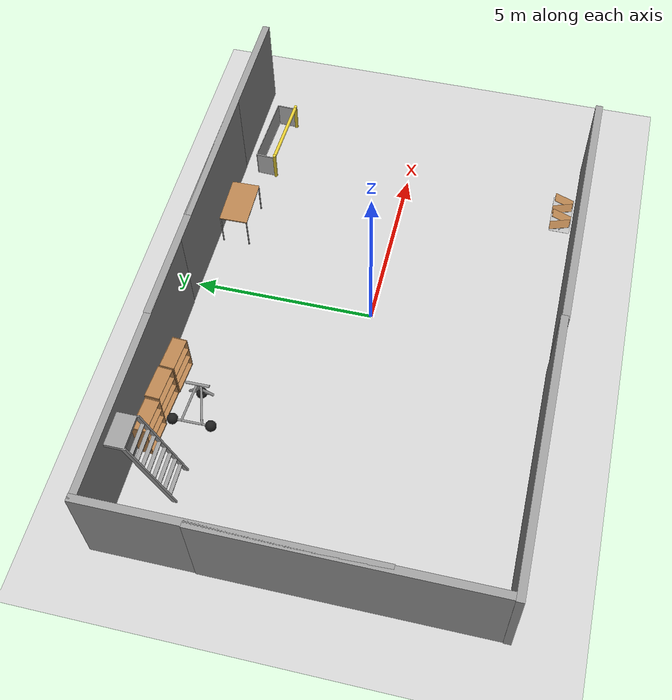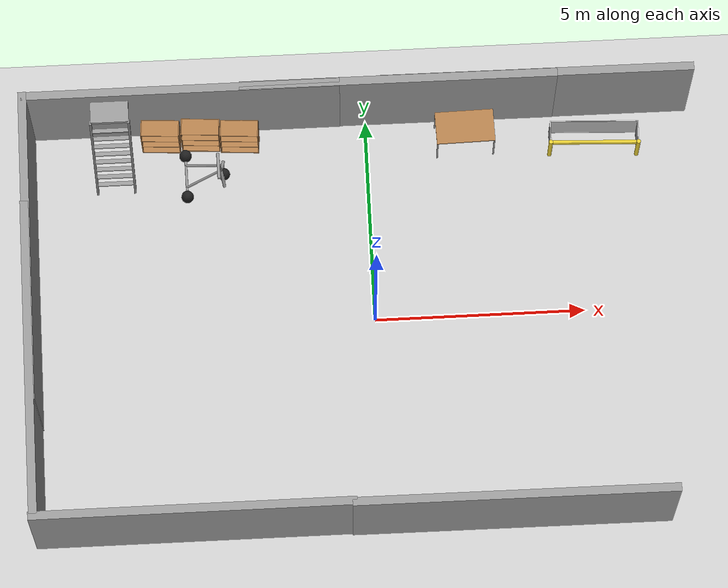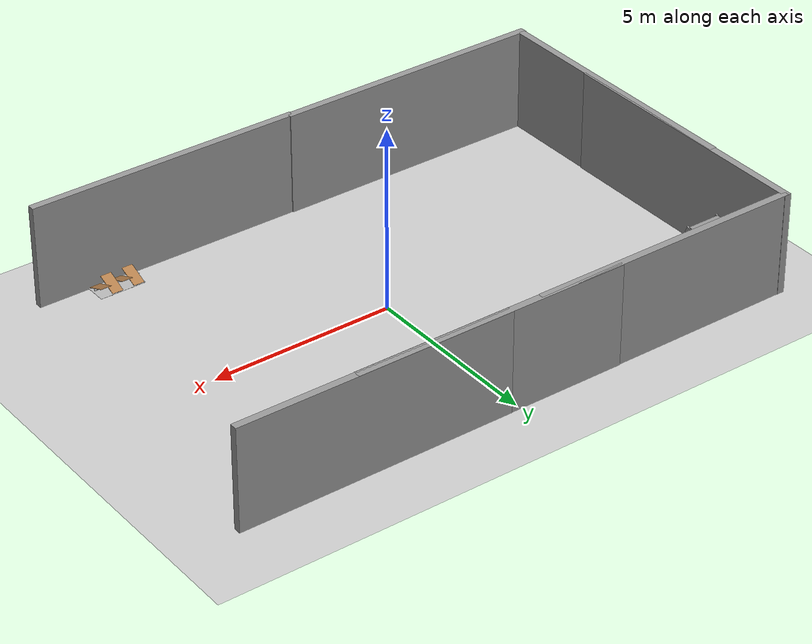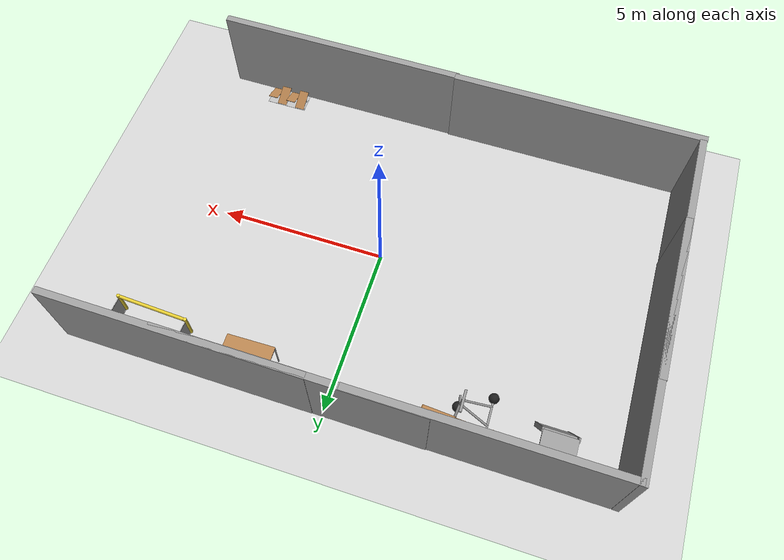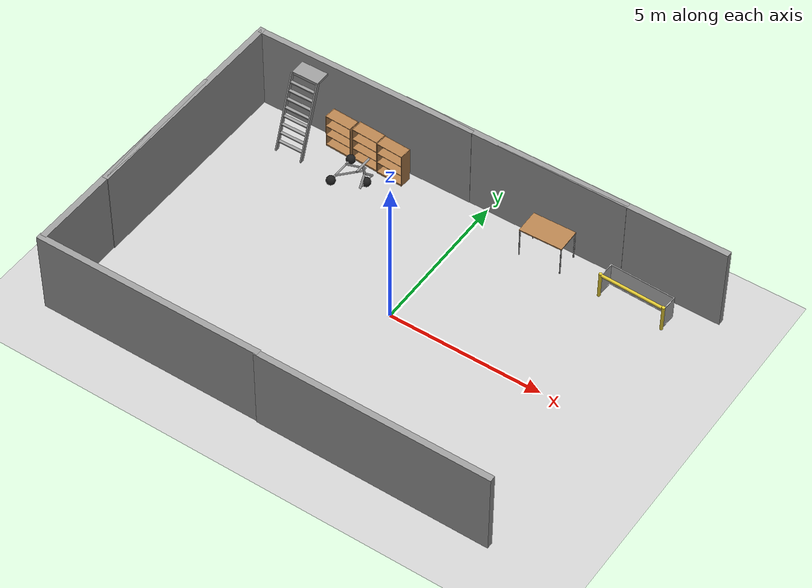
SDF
<sdf version="1.6">
 <world name="default">
  <light name="sun" type="directional">
   <pose>0 0 10 0 -0 0</pose>
   <diffuse>0.8 0.8 0.8 1</diffuse>
   <specular>0.1 0.1 0.1 1</specular>
   <attenuation>
    <range>1000</range>
    <constant>0.9</constant>
    <linear>0.01</linear>
    <quadratic>0.001</quadratic>
   </attenuation>
   <direction>-0.5 0.5 -1</direction>
  </light>
  <model name="ground_plane">
   <static>1</static>
   <link name="link">
    <collision name="collision">
     <geometry><plane><normal>0 0 1</normal><size>100 100</size></plane></geometry>
     <surface><friction><ode><mu>100</mu><mu2>50</mu2></ode></friction></surface>
    </collision>
    <visual name="visual">
     <cast_shadows>0</cast_shadows>
     <geometry><plane><normal>0 0 1</normal><size>100 100</size></plane></geometry>
     <material>
      <script><uri>file://media/materials/scripts/gazebo.material</uri><name>Gazebo/Grey</name></script>
     </material>
    </visual>
   </link>
  </model>
  <gravity>0 0 -9.8</gravity>
  <magnetic_field>6e-06 2.3e-05 -4.2e-05</magnetic_field>
  <atmosphere type="adiabatic"/>
  <physics name="default_physics" default="0" type="ode">
   <max_step_size>0.001</max_step_size>
   <real_time_factor>1</real_time_factor>
   <real_time_update_rate>1000</real_time_update_rate>
  </physics>
  <scene><ambient>0.4 0.4 0.4 1</ambient><background>0.7 0.7 0.7 1</background><shadows>1</shadows></scene>
  <spherical_coordinates>
   <surface_model>EARTH_WGS84</surface_model>
   <latitude_deg>0</latitude_deg>
   <longitude_deg>0</longitude_deg>
   <elevation>0</elevation>
   <heading_deg>0</heading_deg>
  </spherical_coordinates>
  <model name="bookshelf">
   <static>1</static>
   <link name="link">
    <inertial><mass>1</mass></inertial>
    <collision name="back">
     <pose>0 0.005 0.6 0 -0 0</pose>
     <geometry><box><size>0.9 0.01 1.2</size></box></geometry>
    </collision>
    <visual name="visual1">
     <pose>0 0.005 0.6 0 -0 0</pose>
     <geometry><box><size>0.9 0.01 1.2</size></box></geometry>
     <material>
      <script><uri>file://media/materials/scripts/gazebo.material</uri><name>Gazebo/Wood</name></script>
     </material>
    </visual>
    <collision name="left_side">
     <pose>0.45 -0.195 0.6 0 -0 0</pose>
     <geometry><box><size>0.02 0.4 1.2</size></box></geometry>
    </collision>
    <visual name="visual2">
     <pose>0.45 -0.195 0.6 0 -0 0</pose>
     <geometry><box><size>0.02 0.4 1.2</size></box></geometry>
     <material>
      <script><uri>file://media/materials/scripts/gazebo.material</uri><name>Gazebo/Wood</name></script>
     </material>
    </visual>
    <collision name="right_side">
     <pose>-0.45 -0.195 0.6 0 -0 0</pose>
     <geometry><box><size>0.02 0.4 1.2</size></box></geometry>
    </collision>
    <visual name="visual3">
     <pose>-0.45 -0.195 0.6 0 -0 0</pose>
     <geometry><box><size>0.02 0.4 1.2</size></box></geometry>
     <material>
      <script><uri>file://media/materials/scripts/gazebo.material</uri><name>Gazebo/Wood</name></script>
     </material>
    </visual>
    <collision name="bottom">
     <pose>0 -0.195 0.03 0 -0 0</pose>
     <geometry><box><size>0.88 0.4 0.06</size></box></geometry>
    </collision>
    <visual name="visual4">
     <pose>0 -0.195 0.03 0 -0 0</pose>
     <geometry><box><size>0.88 0.4 0.06</size></box></geometry>
     <material>
      <script><uri>file://media/materials/scripts/gazebo.material</uri><name>Gazebo/Wood</name></script>
     </material>
    </visual>
    <collision name="top">
     <pose>0 -0.195 1.19 0 -0 0</pose>
     <geometry><box><size>0.88 0.4 0.02</size></box></geometry>
    </collision>
    <visual name="visual5">
     <pose>0 -0.195 1.19 0 -0 0</pose>
     <geometry><box><size>0.88 0.4 0.02</size></box></geometry>
     <material>
      <script><uri>file://media/materials/scripts/gazebo.material</uri><name>Gazebo/Wood</name></script>
     </material>
    </visual>
    <collision name="low_shelf">
     <pose>0 -0.195 0.43 0 -0 0</pose>
     <geometry><box><size>0.88 0.4 0.02</size></box></geometry>
    </collision>
    <visual name="visual6">
     <pose>0 -0.195 0.43 0 -0 0</pose>
     <geometry><box><size>0.88 0.4 0.02</size></box></geometry>
     <material>
      <script><uri>file://media/materials/scripts/gazebo.material</uri><name>Gazebo/Wood</name></script>
     </material>
    </visual>
    <collision name="high_shelf">
     <pose>0 -0.195 0.8 0 -0 0</pose>
     <geometry><box><size>0.88 0.4 0.02</size></box></geometry>
    </collision>
    <visual name="visual7">
     <pose>0 -0.195 0.8 0 -0 0</pose>
     <geometry><box><size>0.88 0.4 0.02</size></box></geometry>
     <material>
      <script><uri>file://media/materials/scripts/gazebo.material</uri><name>Gazebo/Wood</name></script>
     </material>
    </visual>
   </link>
   <pose>-4.9192 4.86652 0 0 0 -0.060887</pose>
  </model>
  <model name="grey_wall">
   <static>1</static>
   <link name="link">
    <pose>0 0 1.4 0 -0 0</pose>
    <collision name="collision"><geometry><box><size>7.5 0.2 2.8</size></box></geometry></collision>
    <visual name="visual">
     <cast_shadows>0</cast_shadows>
     <geometry><box><size>7.5 0.2 2.8</size></box></geometry>
     <material>
      <script>
       <uri>model://grey_wall/materials/scripts</uri>
       <uri>model://grey_wall/materials/textures</uri>
       <name>vrc/grey_wall</name>
      </script>
     </material>
    </visual>
   </link>
   <pose>-4.36059 5.04351 0 0 -0 0</pose>
  </model>
  <model name="table">
   <static>0</static>
   <link name="link">
    <collision name="surface">
     <pose>0 0 1 0 -0 0</pose>
     <geometry><box><size>1.5 0.8 0.03</size></box></geometry>
     <surface><friction><ode><mu>0.6</mu><mu2>0.6</mu2></ode></friction></surface>
    </collision>
    <visual name="visual1">
     <pose>0 0 1 0 -0 0</pose>
     <geometry><box><size>1.4 0.8 0.04</size></box></geometry>
     <material>
      <script><uri>file://media/materials/scripts/gazebo.material</uri><name>Gazebo/Wood</name></script>
     </material>
    </visual>
    <collision name="front_left_leg">
     <pose>0.68 0.38 0.5 0 -0 0</pose>
     <geometry><cylinder><radius>0.02</radius><length>1</length></cylinder></geometry>
    </collision>
    <visual name="front_left_leg">
     <pose>0.68 0.38 0.5 0 -0 0</pose>
     <geometry><cylinder><radius>0.02</radius><length>1</length></cylinder></geometry>
     <material>
      <script><uri>file://media/materials/scripts/gazebo.material</uri><name>Gazebo/Grey</name></script>
     </material>
    </visual>
    <collision name="front_right_leg">
     <pose>0.68 -0.38 0.5 0 -0 0</pose>
     <geometry><cylinder><radius>0.02</radius><length>1</length></cylinder></geometry>
    </collision>
    <visual name="front_right_leg">
     <pose>0.68 -0.38 0.5 0 -0 0</pose>
     <geometry><cylinder><radius>0.02</radius><length>1</length></cylinder></geometry>
     <material>
      <script><uri>file://media/materials/scripts/gazebo.material</uri><name>Gazebo/Grey</name></script>
     </material>
    </visual>
    <collision name="back_right_leg">
     <pose>-0.68 -0.38 0.5 0 -0 0</pose>
     <geometry><cylinder><radius>0.02</radius><length>1</length></cylinder></geometry>
    </collision>
    <visual name="back_right_leg">
     <pose>-0.68 -0.38 0.5 0 -0 0</pose>
     <geometry><cylinder><radius>0.02</radius><length>1</length></cylinder></geometry>
     <material>
      <script><uri>file://media/materials/scripts/gazebo.material</uri><name>Gazebo/Grey</name></script>
     </material>
    </visual>
    <collision name="back_left_leg">
     <pose>-0.68 0.38 0.5 0 -0 0</pose>
     <geometry><cylinder><radius>0.02</radius><length>1</length></cylinder></geometry>
    </collision>
    <visual name="back_left_leg">
     <pose>-0.68 0.38 0.5 0 -0 0</pose>
     <geometry><cylinder><radius>0.02</radius><length>1</length></cylinder></geometry>
     <material>
      <script><uri>file://media/materials/scripts/gazebo.material</uri><name>Gazebo/Grey</name></script>
     </material>
    </visual>
    <inertial>
     <inertia><ixx>1</ixx><ixy>0</ixy><ixz>0</ixz><iyy>1</iyy><iyz>0</iyz><izz>1</izz></inertia>
     <mass>1</mass>
    </inertial>
   </link>
   <pose>2.36379 4.42695 -9e-06 -4e-06 -0 0.020658</pose>
  </model>
  <model name="trisphere_cycle">
   <link name="frame">
    <pose>-0.408559 0 0.385023 0 -0.522021 0</pose>
    <inertial>
     <mass>10</mass>
     <inertia><ixx>0.228</ixx><iyy>0.743521</iyy><izz>0.965521</izz><ixy>0</ixy><ixz>0</ixz><iyz>0</iyz></inertia>
    </inertial>
    <collision name="axle_collision">
     <pose>-0.471335 0 0 1.5708 -0 0</pose>
     <geometry><cylinder><length>1.03923</length><radius>0.03</radius></cylinder></geometry>
    </collision>
    <visual name="axle_visual">
     <pose>-0.471335 0 0 1.5708 -0 0</pose>
     <geometry><cylinder><length>1.03923</length><radius>0.03</radius></cylinder></geometry>
     <material>
      <script><uri>file://media/materials/scripts/gazebo.material</uri><name>Gazebo/Grey</name></script>
     </material>
    </visual>
    <collision name="frame_left_collision">
     <pose>0 0.171552 0 2.986 1.57079 2.76675</pose>
     <geometry><cylinder><length>1.00317</length><radius>0.03</radius></cylinder></geometry>
    </collision>
    <visual name="frame_left_visual">
     <pose>0 0.171552 0 2.986 1.57079 2.76675</pose>
     <geometry><cylinder><length>1.00317</length><radius>0.03</radius></cylinder></geometry>
     <material>
      <script><uri>file://media/materials/scripts/gazebo.material</uri><name>Gazebo/Grey</name></script>
     </material>
    </visual>
    <collision name="frame_right_collision">
     <pose>0 -0.171552 0 -2.986 1.57079 -2.76675</pose>
     <geometry><cylinder><length>1.00317</length><radius>0.03</radius></cylinder></geometry>
    </collision>
    <visual name="frame_right_visual">
     <pose>0 -0.171552 0 -2.986 1.57079 -2.76675</pose>
     <geometry><cylinder><length>1.00317</length><radius>0.03</radius></cylinder></geometry>
     <material>
      <script><uri>file://media/materials/scripts/gazebo.material</uri><name>Gazebo/Grey</name></script>
     </material>
    </visual>
   </link>
   <link name="fork">
    <pose>0.041441 0 0.385023 0 -0.174533 0</pose>
    <inertial>
     <mass>3</mass>
     <inertia>
      <ixx>0.158203</ixx>
      <iyy>0.0583594</iyy>
      <izz>0.102656</izz>
      <ixy>0</ixy>
      <ixz>0</ixz>
      <iyz>0</iyz>
     </inertia>
    </inertial>
    <collision name="handlebars_collision">
     <pose>0 0 0.397748 1.5708 -0 0</pose>
     <geometry><cylinder><length>0.636396</length><radius>0.0375</radius></cylinder></geometry>
    </collision>
    <visual name="handlebars_visual">
     <pose>0 0 0.397748 1.5708 -0 0</pose>
     <geometry><cylinder><length>0.636396</length><radius>0.0375</radius></cylinder></geometry>
     <material>
      <script><uri>file://media/materials/scripts/gazebo.material</uri><name>Gazebo/Grey</name></script>
     </material>
    </visual>
    <collision name="headtube_collision">
     <pose>0 0 0.238649 0 -0 0</pose>
     <geometry><cylinder><length>0.318198</length><radius>0.0375</radius></cylinder></geometry>
    </collision>
    <visual name="headtube_visual">
     <pose>0 0 0.238649 0 -0 0</pose>
     <geometry><cylinder><length>0.318198</length><radius>0.0375</radius></cylinder></geometry>
     <material>
      <script><uri>file://media/materials/scripts/gazebo.material</uri><name>Gazebo/Grey</name></script>
     </material>
    </visual>
    <collision name="spindle_collision">
     <pose>0 0 -0.238649 1.5708 -0 0</pose>
     <geometry><cylinder><length>0.636396</length><radius>0.015</radius></cylinder></geometry>
    </collision>
    <visual name="spindle_visual">
     <pose>0 0 -0.238649 1.5708 -0 0</pose>
     <geometry><cylinder><length>0.636396</length><radius>0.015</radius></cylinder></geometry>
     <material>
      <script><uri>file://media/materials/scripts/gazebo.material</uri><name>Gazebo/Grey</name></script>
     </material>
    </visual>
    <collision name="fork_left_collision">
     <pose>0 0.159099 -0.07955 0.785398 -0 0</pose>
     <geometry><cylinder><length>0.45</length><radius>0.0375</radius></cylinder></geometry>
    </collision>
    <visual name="fork_left_visual">
     <pose>0 0.159099 -0.07955 0.785398 -0 0</pose>
     <geometry><cylinder><length>0.45</length><radius>0.0375</radius></cylinder></geometry>
     <material>
      <script><uri>file://media/materials/scripts/gazebo.material</uri><name>Gazebo/Grey</name></script>
     </material>
    </visual>
    <collision name="fork_right_collision">
     <pose>0 -0.159099 -0.07955 -0.785398 0 0</pose>
     <geometry><cylinder><length>0.45</length><radius>0.0375</radius></cylinder></geometry>
    </collision>
    <visual name="fork_right_visual">
     <pose>0 -0.159099 -0.07955 -0.785398 0 0</pose>
     <geometry><cylinder><length>0.45</length><radius>0.0375</radius></cylinder></geometry>
     <material>
      <script><uri>file://media/materials/scripts/gazebo.material</uri><name>Gazebo/Grey</name></script>
     </material>
    </visual>
   </link>
   <link name="wheel_front">
    <pose>0.082882 0 0.15 0 -0 0</pose>
    <inertial>
     <mass>0.5</mass>
     <inertia><ixx>0.0045</ixx><iyy>0.0045</iyy><izz>0.0045</izz><ixy>0</ixy><ixz>0</ixz><iyz>0</iyz></inertia>
    </inertial>
    <collision name="collision">
     <geometry><sphere><radius>0.15</radius></sphere></geometry>
     <surface><contact><ode><kp>1e+08</kp><kd>1</kd><min_depth>0.0005</min_depth></ode></contact></surface>
    </collision>
    <visual name="visual">
     <geometry><sphere><radius>0.15</radius></sphere></geometry>
     <material>
      <script><uri>file://media/materials/scripts/gazebo.material</uri><name>Gazebo/Black</name></script>
     </material>
    </visual>
   </link>
   <joint name="wheel_front_steer" type="revolute">
    <parent>frame</parent>
    <child>fork</child>
    <axis>
     <xyz>0 0 1</xyz>
     <limit><lower>-0.959931</lower><upper>0.959931</upper></limit>
     <use_parent_model_frame>0</use_parent_model_frame>
     <dynamics><spring_reference>0</spring_reference><spring_stiffness>0</spring_stiffness></dynamics>
    </axis>
   </joint>
   <joint name="wheel_front_spin" type="revolute">
    <parent>fork</parent>
    <child>wheel_front</child>
    <axis>
     <xyz>0 1 0</xyz>
     <use_parent_model_frame>0</use_parent_model_frame>
     <limit><lower>-1e+16</lower><upper>1e+16</upper></limit>
     <dynamics><spring_reference>0</spring_reference><spring_stiffness>0</spring_stiffness></dynamics>
    </axis>
   </joint>
   <link name="wheel_rear_left">
    <pose>-0.817118 0.519615 0.15 0 -0 0</pose>
    <inertial>
     <mass>0.5</mass>
     <inertia><ixx>0.0045</ixx><iyy>0.0045</iyy><izz>0.0045</izz><ixy>0</ixy><ixz>0</ixz><iyz>0</iyz></inertia>
    </inertial>
    <collision name="collision">
     <geometry><sphere><radius>0.15</radius></sphere></geometry>
     <surface><contact><ode><kp>1e+08</kp><kd>1</kd><min_depth>0.0005</min_depth></ode></contact></surface>
    </collision>
    <visual name="visual">
     <geometry><sphere><radius>0.15</radius></sphere></geometry>
     <material>
      <script><uri>file://media/materials/scripts/gazebo.material</uri><name>Gazebo/Black</name></script>
     </material>
    </visual>
   </link>
   <joint name="wheel_rear_left_spin" type="revolute">
    <parent>frame</parent>
    <child>wheel_rear_left</child>
    <axis>
     <xyz>0 1 0</xyz>
     <use_parent_model_frame>0</use_parent_model_frame>
     <limit><lower>-1e+16</lower><upper>1e+16</upper></limit>
     <dynamics><spring_reference>0</spring_reference><spring_stiffness>0</spring_stiffness></dynamics>
    </axis>
   </joint>
   <link name="wheel_rear_right">
    <pose>-0.817118 -0.519615 0.15 0 -0 0</pose>
    <inertial>
     <mass>0.5</mass>
     <inertia><ixx>0.0045</ixx><iyy>0.0045</iyy><izz>0.0045</izz><ixy>0</ixy><ixz>0</ixz><iyz>0</iyz></inertia>
    </inertial>
    <collision name="collision">
     <geometry><sphere><radius>0.15</radius></sphere></geometry>
     <surface><contact><ode><kp>1e+08</kp><kd>1</kd><min_depth>0.0005</min_depth></ode></contact></surface>
    </collision>
    <visual name="visual">
     <geometry><sphere><radius>0.15</radius></sphere></geometry>
     <material>
      <script><uri>file://media/materials/scripts/gazebo.material</uri><name>Gazebo/Black</name></script>
     </material>
    </visual>
   </link>
   <joint name="wheel_rear_right_spin" type="revolute">
    <parent>frame</parent>
    <child>wheel_rear_right</child>
    <axis>
     <xyz>0 1 0</xyz>
     <use_parent_model_frame>0</use_parent_model_frame>
     <limit><lower>-1e+16</lower><upper>1e+16</upper></limit>
     <dynamics><spring_reference>0</spring_reference><spring_stiffness>0</spring_stiffness></dynamics>
    </axis>
   </joint>
   <pose>-3.5477 3.80042 -0.000501 0 1e-06 0.013985</pose>
  </model>
  <model name="grey_wall_clone_clone">
   <static>1</static>
   <link name="link">
    <pose>0 0 1.4 0 -0 0</pose>
    <collision name="collision"><geometry><box><size>7.5 0.2 2.8</size></box></geometry></collision>
    <visual name="visual">
     <cast_shadows>0</cast_shadows>
     <geometry><box><size>7.5 0.2 2.8</size></box></geometry>
     <material>
      <script>
       <uri>model://grey_wall/materials/scripts</uri>
       <uri>model://grey_wall/materials/textures</uri>
       <name>vrc/grey_wall</name>
      </script>
     </material>
    </visual>
   </link>
   <pose>4.00487 5.05079 0 0 0 -0.002782</pose>
  </model>
  <model name="grey_wall_clone_clone_clone">
   <static>1</static>
   <link name="link">
    <pose>0 0 1.4 0 -0 0</pose>
    <collision name="collision"><geometry><box><size>7.5 0.2 2.8</size></box></geometry></collision>
    <visual name="visual">
     <cast_shadows>0</cast_shadows>
     <geometry><box><size>7.5 0.2 2.8</size></box></geometry>
     <material>
      <script>
       <uri>model://grey_wall/materials/scripts</uri>
       <uri>model://grey_wall/materials/textures</uri>
       <name>vrc/grey_wall</name>
      </script>
     </material>
    </visual>
   </link>
   <pose>2.95568 -5.14073 0 0 0 -0.002782</pose>
  </model>
  <model name="grey_wall_clone_0">
   <static>1</static>
   <link name="link">
    <pose>0 0 1.4 0 -0 0</pose>
    <collision name="collision"><geometry><box><size>7.5 0.2 2.8</size></box></geometry></collision>
    <visual name="visual">
     <cast_shadows>0</cast_shadows>
     <geometry><box><size>7.5 0.2 2.8</size></box></geometry>
     <material>
      <script>
       <uri>model://grey_wall/materials/scripts</uri>
       <uri>model://grey_wall/materials/textures</uri>
       <name>vrc/grey_wall</name>
      </script>
     </material>
    </visual>
   </link>
   <pose>-4.439 -5.10282 0 0 -0 0</pose>
  </model>
  <model name="grey_wall_clone_clone_1">
   <static>1</static>
   <link name="link">
    <pose>0 0 1.4 0 -0 0</pose>
    <collision name="collision"><geometry><box><size>7.5 0.2 2.8</size></box></geometry></collision>
    <visual name="visual">
     <cast_shadows>0</cast_shadows>
     <geometry><box><size>7.5 0.2 2.8</size></box></geometry>
     <material>
      <script>
       <uri>model://grey_wall/materials/scripts</uri>
       <uri>model://grey_wall/materials/textures</uri>
       <name>vrc/grey_wall</name>
      </script>
     </material>
    </visual>
   </link>
   <pose>-8.07106 1.40173 0 0 0 -1.56783</pose>
  </model>
  <model name="grey_wall_clone_clone_0_clone">
   <static>1</static>
   <link name="link">
    <pose>0 0 1.4 0 -0 0</pose>
    <collision name="collision"><geometry><box><size>7.5 0.2 2.8</size></box></geometry></collision>
    <visual name="visual">
     <cast_shadows>0</cast_shadows>
     <geometry><box><size>7.5 0.2 2.8</size></box></geometry>
     <material>
      <script>
       <uri>model://grey_wall/materials/scripts</uri>
       <uri>model://grey_wall/materials/textures</uri>
       <name>vrc/grey_wall</name>
      </script>
     </material>
    </visual>
   </link>
   <pose>-8.08225 -1.29953 0 0 0 -1.56783</pose>
  </model>
  <model name="grey_wall_clone_clone_clone_0">
   <static>1</static>
   <link name="link">
    <pose>0 0 1.4 0 -0 0</pose>
    <collision name="collision"><geometry><box><size>7.5 0.2 2.8</size></box></geometry></collision>
    <visual name="visual">
     <cast_shadows>0</cast_shadows>
     <geometry><box><size>7.5 0.2 2.8</size></box></geometry>
     <material>
      <script>
       <uri>model://grey_wall/materials/scripts</uri>
       <uri>model://grey_wall/materials/textures</uri>
       <name>vrc/grey_wall</name>
      </script>
     </material>
    </visual>
   </link>
   <pose>0.779791 5.05088 0 0 0 -0.002782</pose>
  </model>
  <model name="ladder_70deg_0rails">
   <static>1</static>
   <link name="step0">
    <pose>0 0.097059 0.266667 0 -0 0</pose>
    <inertial>
     <mass>9.75482</mass>
     <inertia>
      <ixx>0.00957124</ixx>
      <iyy>0.65963</iyy>
      <izz>0.666842</izz>
      <ixy>0</ixy>
      <ixz>0</ixz>
      <iyz>0</iyz>
     </inertia>
    </inertial>
    <collision name="collision"><geometry><box><size>0.9 0.1016 0.0381</size></box></geometry></collision>
    <visual name="visual">
     <geometry><box><size>0.9 0.1016 0.0381</size></box></geometry>
     <material>
      <script><uri>file://media/materials/scripts/gazebo.material</uri><name>Gazebo/Grey</name></script>
     </material>
    </visual>
   </link>
   <link name="step1">
    <pose>0 0.194117 0.533333 0 -0 0</pose>
    <inertial>
     <mass>9.75482</mass>
     <inertia>
      <ixx>0.00957124</ixx>
      <iyy>0.65963</iyy>
      <izz>0.666842</izz>
      <ixy>0</ixy>
      <ixz>0</ixz>
      <iyz>0</iyz>
     </inertia>
    </inertial>
    <collision name="collision"><geometry><box><size>0.9 0.1016 0.0381</size></box></geometry></collision>
    <visual name="visual">
     <geometry><box><size>0.9 0.1016 0.0381</size></box></geometry>
     <material>
      <script><uri>file://media/materials/scripts/gazebo.material</uri><name>Gazebo/Grey</name></script>
     </material>
    </visual>
   </link>
   <link name="step2">
    <pose>0 0.291176 0.8 0 -0 0</pose>
    <inertial>
     <mass>9.75482</mass>
     <inertia>
      <ixx>0.00957124</ixx>
      <iyy>0.65963</iyy>
      <izz>0.666842</izz>
      <ixy>0</ixy>
      <ixz>0</ixz>
      <iyz>0</iyz>
     </inertia>
    </inertial>
    <collision name="collision"><geometry><box><size>0.9 0.1016 0.0381</size></box></geometry></collision>
    <visual name="visual">
     <geometry><box><size>0.9 0.1016 0.0381</size></box></geometry>
     <material>
      <script><uri>file://media/materials/scripts/gazebo.material</uri><name>Gazebo/Grey</name></script>
     </material>
    </visual>
   </link>
   <link name="step3">
    <pose>0 0.388235 1.06667 0 -0 0</pose>
    <inertial>
     <mass>9.75482</mass>
     <inertia>
      <ixx>0.00957124</ixx>
      <iyy>0.65963</iyy>
      <izz>0.666842</izz>
      <ixy>0</ixy>
      <ixz>0</ixz>
      <iyz>0</iyz>
     </inertia>
    </inertial>
    <collision name="collision"><geometry><box><size>0.9 0.1016 0.0381</size></box></geometry></collision>
    <visual name="visual">
     <geometry><box><size>0.9 0.1016 0.0381</size></box></geometry>
     <material>
      <script><uri>file://media/materials/scripts/gazebo.material</uri><name>Gazebo/Grey</name></script>
     </material>
    </visual>
   </link>
   <link name="step4">
    <pose>0 0.485294 1.33333 0 -0 0</pose>
    <inertial>
     <mass>9.75482</mass>
     <inertia>
      <ixx>0.00957124</ixx>
      <iyy>0.65963</iyy>
      <izz>0.666842</izz>
      <ixy>0</ixy>
      <ixz>0</ixz>
      <iyz>0</iyz>
     </inertia>
    </inertial>
    <collision name="collision"><geometry><box><size>0.9 0.1016 0.0381</size></box></geometry></collision>
    <visual name="visual">
     <geometry><box><size>0.9 0.1016 0.0381</size></box></geometry>
     <material>
      <script><uri>file://media/materials/scripts/gazebo.material</uri><name>Gazebo/Grey</name></script>
     </material>
    </visual>
   </link>
   <link name="step5">
    <pose>0 0.582352 1.6 0 -0 0</pose>
    <inertial>
     <mass>9.75482</mass>
     <inertia>
      <ixx>0.00957124</ixx>
      <iyy>0.65963</iyy>
      <izz>0.666842</izz>
      <ixy>0</ixy>
      <ixz>0</ixz>
      <iyz>0</iyz>
     </inertia>
    </inertial>
    <collision name="collision"><geometry><box><size>0.9 0.1016 0.0381</size></box></geometry></collision>
    <visual name="visual">
     <geometry><box><size>0.9 0.1016 0.0381</size></box></geometry>
     <material>
      <script><uri>file://media/materials/scripts/gazebo.material</uri><name>Gazebo/Grey</name></script>
     </material>
    </visual>
   </link>
   <link name="step6">
    <pose>0 0.679411 1.86667 0 -0 0</pose>
    <inertial>
     <mass>9.75482</mass>
     <inertia>
      <ixx>0.00957124</ixx>
      <iyy>0.65963</iyy>
      <izz>0.666842</izz>
      <ixy>0</ixy>
      <ixz>0</ixz>
      <iyz>0</iyz>
     </inertia>
    </inertial>
    <collision name="collision"><geometry><box><size>0.9 0.1016 0.0381</size></box></geometry></collision>
    <visual name="visual">
     <geometry><box><size>0.9 0.1016 0.0381</size></box></geometry>
     <material>
      <script><uri>file://media/materials/scripts/gazebo.material</uri><name>Gazebo/Grey</name></script>
     </material>
    </visual>
   </link>
   <link name="step7">
    <pose>0 0.77647 2.13333 0 -0 0</pose>
    <inertial>
     <mass>9.75482</mass>
     <inertia>
      <ixx>0.00957124</ixx>
      <iyy>0.65963</iyy>
      <izz>0.666842</izz>
      <ixy>0</ixy>
      <ixz>0</ixz>
      <iyz>0</iyz>
     </inertia>
    </inertial>
    <collision name="collision"><geometry><box><size>0.9 0.1016 0.0381</size></box></geometry></collision>
    <visual name="visual">
     <geometry><box><size>0.9 0.1016 0.0381</size></box></geometry>
     <material>
      <script><uri>file://media/materials/scripts/gazebo.material</uri><name>Gazebo/Grey</name></script>
     </material>
    </visual>
   </link>
   <link name="landing">
    <pose>0 1.17353 2.4 0 -0 0</pose>
    <inertial>
     <mass>57.6072</mass>
     <inertia><ixx>1.73518</ixx><iyy>3.89545</iyy><izz>5.6167</izz><ixy>0</ixy><ixz>0</ixz><iyz>0</iyz></inertia>
    </inertial>
    <collision name="collision"><geometry><box><size>0.9 0.6 0.1016</size></box></geometry></collision>
    <visual name="visual">
     <geometry><box><size>0.9 0.6 0.1016</size></box></geometry>
     <material>
      <script><uri>file://media/materials/scripts/gazebo.material</uri><name>Gazebo/Grey</name></script>
     </material>
    </visual>
   </link>
   <link name="left_side_wall">
    <pose>-0.45 0.436764 1.2 1.22173 -0 0</pose>
    <collision name="collision"><geometry><box><size>0.0508 2.63403 0.13</size></box></geometry></collision>
    <visual name="visual">
     <geometry><box><size>0.0508 2.63403 0.13</size></box></geometry>
     <material>
      <script><uri>file://media/materials/scripts/gazebo.material</uri><name>Gazebo/Grey</name></script>
     </material>
    </visual>
   </link>
   <link name="right_side_wall">
    <pose>0.45 0.436764 1.2 1.22173 -0 0</pose>
    <collision name="collision"><geometry><box><size>0.0508 2.63403 0.13</size></box></geometry></collision>
    <visual name="visual">
     <geometry><box><size>0.0508 2.63403 0.13</size></box></geometry>
     <material>
      <script><uri>file://media/materials/scripts/gazebo.material</uri><name>Gazebo/Grey</name></script>
     </material>
    </visual>
   </link>
   <pose>-6.06223 3.55152 0 0 -0 0</pose>
  </model>
  <model name="robocup_3d_goal">
   <static>1</static>
   <link name="left_post">
    <pose>0 1.05 0.45 0 -0 0</pose>
    <collision name="collision">
     <geometry><cylinder><radius>0.05</radius><length>0.9</length></cylinder></geometry>
    </collision>
    <visual name="visual">
     <geometry><cylinder><radius>0.05</radius><length>0.9</length></cylinder></geometry>
     <material>
      <script><uri>file://media/materials/scripts/gazebo.material</uri><name>Gazebo/ZincYellow</name></script>
     </material>
    </visual>
   </link>
   <link name="left_support_horiz_lower">
    <pose>0.3 1.05 0.01 0 -0 0</pose>
    <collision name="collision"><geometry><box><size>0.5 0.02 0.02</size></box></geometry></collision>
    <visual name="visual">
     <geometry><box><size>0.5 0.02 0.02</size></box></geometry>
     <material>
      <script><uri>file://media/materials/scripts/gazebo.material</uri><name>Gazebo/White</name></script>
     </material>
    </visual>
   </link>
   <link name="left_support_horiz_upper">
    <pose>0.3 1.05 0.79 0 -0 0</pose>
    <collision name="collision"><geometry><box><size>0.5 0.02 0.02</size></box></geometry></collision>
    <visual name="visual">
     <geometry><box><size>0.5 0.02 0.02</size></box></geometry>
     <material>
      <script><uri>file://media/materials/scripts/gazebo.material</uri><name>Gazebo/White</name></script>
     </material>
    </visual>
   </link>
   <link name="left_support_vertical">
    <pose>0.56 1.05 0.4 3.14159 1.57079 3.14159</pose>
    <collision name="collision"><geometry><box><size>0.8 0.02 0.02</size></box></geometry></collision>
    <visual name="visual">
     <geometry><box><size>0.8 0.02 0.02</size></box></geometry>
     <material>
      <script><uri>file://media/materials/scripts/gazebo.material</uri><name>Gazebo/White</name></script>
     </material>
    </visual>
   </link>
   <link name="right_support_horiz_lower">
    <pose>0.3 -1.05 0.01 0 -0 0</pose>
    <collision name="collision"><geometry><box><size>0.5 0.02 0.02</size></box></geometry></collision>
    <visual name="visual">
     <geometry><box><size>0.5 0.02 0.02</size></box></geometry>
     <material>
      <script><uri>file://media/materials/scripts/gazebo.material</uri><name>Gazebo/White</name></script>
     </material>
    </visual>
   </link>
   <link name="right_support_horiz_upper">
    <pose>0.3 -1.05 0.79 0 -0 0</pose>
    <collision name="collision"><geometry><box><size>0.5 0.02 0.02</size></box></geometry></collision>
    <visual name="visual">
     <geometry><box><size>0.5 0.02 0.02</size></box></geometry>
     <material>
      <script><uri>file://media/materials/scripts/gazebo.material</uri><name>Gazebo/White</name></script>
     </material>
    </visual>
   </link>
   <link name="right_support_vertical">
    <pose>0.56 -1.05 0.4 3.14159 1.57079 3.14159</pose>
    <collision name="collision"><geometry><box><size>0.8 0.02 0.02</size></box></geometry></collision>
    <visual name="visual">
     <geometry><box><size>0.8 0.02 0.02</size></box></geometry>
     <material>
      <script><uri>file://media/materials/scripts/gazebo.material</uri><name>Gazebo/White</name></script>
     </material>
    </visual>
   </link>
   <link name="center_support_horiz_lower">
    <pose>0.56 0 0.01 3.14159 1.57079 3.14159</pose>
    <collision name="collision"><geometry><box><size>0.02 2.08 0.02</size></box></geometry></collision>
    <visual name="visual">
     <geometry><box><size>0.02 2.08 0.02</size></box></geometry>
     <material>
      <script><uri>file://media/materials/scripts/gazebo.material</uri><name>Gazebo/White</name></script>
     </material>
    </visual>
   </link>
   <link name="center_support_horiz_upper">
    <pose>0.56 0 0.79 3.14159 1.57079 3.14159</pose>
    <collision name="collision"><geometry><box><size>0.02 2.08 0.02</size></box></geometry></collision>
    <visual name="visual">
     <geometry><box><size>0.02 2.08 0.02</size></box></geometry>
     <material>
      <script><uri>file://media/materials/scripts/gazebo.material</uri><name>Gazebo/White</name></script>
     </material>
    </visual>
   </link>
   <link name="right_post">
    <pose>0 -1.05 0.45 0 -0 0</pose>
    <collision name="collision">
     <geometry><cylinder><radius>0.05</radius><length>0.9</length></cylinder></geometry>
    </collision>
    <visual name="visual">
     <geometry><cylinder><radius>0.05</radius><length>0.9</length></cylinder></geometry>
     <material>
      <script><uri>file://media/materials/scripts/gazebo.material</uri><name>Gazebo/ZincYellow</name></script>
     </material>
    </visual>
   </link>
   <link name="crossbar">
    <pose>0 0 0.85 1.57 1.57 0</pose>
    <collision name="collision">
     <geometry><cylinder><radius>0.05</radius><length>2</length></cylinder></geometry>
    </collision>
    <visual name="visual">
     <geometry><cylinder><radius>0.05</radius><length>2</length></cylinder></geometry>
     <material>
      <script><uri>file://media/materials/scripts/gazebo.material</uri><name>Gazebo/ZincYellow</name></script>
     </material>
    </visual>
   </link>
   <link name="center_net">
    <pose>0.56 0 0.4 0 -0 0</pose>
    <collision name="collision"><geometry><box><size>0.01 2.1 0.8</size></box></geometry></collision>
    <visual name="visual">
     <geometry><box><size>0.01 2.1 0.8</size></box></geometry>
     <material>
      <script>
       <uri>model://robocup09_spl_field/materials/scripts/</uri>
       <uri>model://robocup09_spl_field/materials/textures/</uri>
       <name>RoboCup/Net</name>
      </script>
     </material>
    </visual>
   </link>
   <link name="left_net">
    <pose>0.3 1.05 0.4 0 -0 0</pose>
    <collision name="collision"><geometry><box><size>0.5 0.01 0.76</size></box></geometry></collision>
    <visual name="visual">
     <geometry><box><size>0.5 0.01 0.76</size></box></geometry>
     <material>
      <script>
       <uri>model://robocup09_spl_field/materials/scripts/</uri>
       <uri>model://robocup09_spl_field/materials/textures/</uri>
       <name>RoboCup/Net</name>
      </script>
     </material>
    </visual>
   </link>
   <link name="right_net">
    <pose>0.3 -1.05 0.4 0 -0 0</pose>
    <collision name="collision"><geometry><box><size>0.5 0.01 0.76</size></box></geometry></collision>
    <visual name="visual">
     <geometry><box><size>0.5 0.01 0.76</size></box></geometry>
     <material>
      <script>
       <uri>model://robocup09_spl_field/materials/scripts/</uri>
       <uri>model://robocup09_spl_field/materials/textures/</uri>
       <name>RoboCup/Net</name>
      </script>
     </material>
    </visual>
   </link>
   <pose>5.45643 3.93321 0 0 -0 1.52982</pose>
  </model>
  <model name="bookshelf_clone_0">
   <static>1</static>
   <link name="link">
    <inertial><mass>1</mass></inertial>
    <collision name="back">
     <pose>0 0.005 0.6 0 -0 0</pose>
     <geometry><box><size>0.9 0.01 1.2</size></box></geometry>
    </collision>
    <visual name="visual1">
     <pose>0 0.005 0.6 0 -0 0</pose>
     <geometry><box><size>0.9 0.01 1.2</size></box></geometry>
     <material>
      <script><uri>file://media/materials/scripts/gazebo.material</uri><name>Gazebo/Wood</name></script>
     </material>
    </visual>
    <collision name="left_side">
     <pose>0.45 -0.195 0.6 0 -0 0</pose>
     <geometry><box><size>0.02 0.4 1.2</size></box></geometry>
    </collision>
    <visual name="visual2">
     <pose>0.45 -0.195 0.6 0 -0 0</pose>
     <geometry><box><size>0.02 0.4 1.2</size></box></geometry>
     <material>
      <script><uri>file://media/materials/scripts/gazebo.material</uri><name>Gazebo/Wood</name></script>
     </material>
    </visual>
    <collision name="right_side">
     <pose>-0.45 -0.195 0.6 0 -0 0</pose>
     <geometry><box><size>0.02 0.4 1.2</size></box></geometry>
    </collision>
    <visual name="visual3">
     <pose>-0.45 -0.195 0.6 0 -0 0</pose>
     <geometry><box><size>0.02 0.4 1.2</size></box></geometry>
     <material>
      <script><uri>file://media/materials/scripts/gazebo.material</uri><name>Gazebo/Wood</name></script>
     </material>
    </visual>
    <collision name="bottom">
     <pose>0 -0.195 0.03 0 -0 0</pose>
     <geometry><box><size>0.88 0.4 0.06</size></box></geometry>
    </collision>
    <visual name="visual4">
     <pose>0 -0.195 0.03 0 -0 0</pose>
     <geometry><box><size>0.88 0.4 0.06</size></box></geometry>
     <material>
      <script><uri>file://media/materials/scripts/gazebo.material</uri><name>Gazebo/Wood</name></script>
     </material>
    </visual>
    <collision name="top">
     <pose>0 -0.195 1.19 0 -0 0</pose>
     <geometry><box><size>0.88 0.4 0.02</size></box></geometry>
    </collision>
    <visual name="visual5">
     <pose>0 -0.195 1.19 0 -0 0</pose>
     <geometry><box><size>0.88 0.4 0.02</size></box></geometry>
     <material>
      <script><uri>file://media/materials/scripts/gazebo.material</uri><name>Gazebo/Wood</name></script>
     </material>
    </visual>
    <collision name="low_shelf">
     <pose>0 -0.195 0.43 0 -0 0</pose>
     <geometry><box><size>0.88 0.4 0.02</size></box></geometry>
    </collision>
    <visual name="visual6">
     <pose>0 -0.195 0.43 0 -0 0</pose>
     <geometry><box><size>0.88 0.4 0.02</size></box></geometry>
     <material>
      <script><uri>file://media/materials/scripts/gazebo.material</uri><name>Gazebo/Wood</name></script>
     </material>
    </visual>
    <collision name="high_shelf">
     <pose>0 -0.195 0.8 0 -0 0</pose>
     <geometry><box><size>0.88 0.4 0.02</size></box></geometry>
    </collision>
    <visual name="visual7">
     <pose>0 -0.195 0.8 0 -0 0</pose>
     <geometry><box><size>0.88 0.4 0.02</size></box></geometry>
     <material>
      <script><uri>file://media/materials/scripts/gazebo.material</uri><name>Gazebo/Wood</name></script>
     </material>
    </visual>
   </link>
   <pose>-3.96029 4.85403 0 0 0 -0.060887</pose>
  </model>
  <model name="bookshelf_clone_0_clone">
   <static>1</static>
   <link name="link">
    <inertial><mass>1</mass></inertial>
    <collision name="back">
     <pose>0 0.005 0.6 0 -0 0</pose>
     <geometry><box><size>0.9 0.01 1.2</size></box></geometry>
    </collision>
    <visual name="visual1">
     <pose>0 0.005 0.6 0 -0 0</pose>
     <geometry><box><size>0.9 0.01 1.2</size></box></geometry>
     <material>
      <script><uri>file://media/materials/scripts/gazebo.material</uri><name>Gazebo/Wood</name></script>
     </material>
    </visual>
    <collision name="left_side">
     <pose>0.45 -0.195 0.6 0 -0 0</pose>
     <geometry><box><size>0.02 0.4 1.2</size></box></geometry>
    </collision>
    <visual name="visual2">
     <pose>0.45 -0.195 0.6 0 -0 0</pose>
     <geometry><box><size>0.02 0.4 1.2</size></box></geometry>
     <material>
      <script><uri>file://media/materials/scripts/gazebo.material</uri><name>Gazebo/Wood</name></script>
     </material>
    </visual>
    <collision name="right_side">
     <pose>-0.45 -0.195 0.6 0 -0 0</pose>
     <geometry><box><size>0.02 0.4 1.2</size></box></geometry>
    </collision>
    <visual name="visual3">
     <pose>-0.45 -0.195 0.6 0 -0 0</pose>
     <geometry><box><size>0.02 0.4 1.2</size></box></geometry>
     <material>
      <script><uri>file://media/materials/scripts/gazebo.material</uri><name>Gazebo/Wood</name></script>
     </material>
    </visual>
    <collision name="bottom">
     <pose>0 -0.195 0.03 0 -0 0</pose>
     <geometry><box><size>0.88 0.4 0.06</size></box></geometry>
    </collision>
    <visual name="visual4">
     <pose>0 -0.195 0.03 0 -0 0</pose>
     <geometry><box><size>0.88 0.4 0.06</size></box></geometry>
     <material>
      <script><uri>file://media/materials/scripts/gazebo.material</uri><name>Gazebo/Wood</name></script>
     </material>
    </visual>
    <collision name="top">
     <pose>0 -0.195 1.19 0 -0 0</pose>
     <geometry><box><size>0.88 0.4 0.02</size></box></geometry>
    </collision>
    <visual name="visual5">
     <pose>0 -0.195 1.19 0 -0 0</pose>
     <geometry><box><size>0.88 0.4 0.02</size></box></geometry>
     <material>
      <script><uri>file://media/materials/scripts/gazebo.material</uri><name>Gazebo/Wood</name></script>
     </material>
    </visual>
    <collision name="low_shelf">
     <pose>0 -0.195 0.43 0 -0 0</pose>
     <geometry><box><size>0.88 0.4 0.02</size></box></geometry>
    </collision>
    <visual name="visual6">
     <pose>0 -0.195 0.43 0 -0 0</pose>
     <geometry><box><size>0.88 0.4 0.02</size></box></geometry>
     <material>
      <script><uri>file://media/materials/scripts/gazebo.material</uri><name>Gazebo/Wood</name></script>
     </material>
    </visual>
    <collision name="high_shelf">
     <pose>0 -0.195 0.8 0 -0 0</pose>
     <geometry><box><size>0.88 0.4 0.02</size></box></geometry>
    </collision>
    <visual name="visual7">
     <pose>0 -0.195 0.8 0 -0 0</pose>
     <geometry><box><size>0.88 0.4 0.02</size></box></geometry>
     <material>
      <script><uri>file://media/materials/scripts/gazebo.material</uri><name>Gazebo/Wood</name></script>
     </material>
    </visual>
   </link>
   <pose>-3.02932 4.77547 0 0 0 -0.060887</pose>
  </model>
  <model name="frc2016_chevaldefrise">
   <link name="base">
    <inertial>
     <mass>10</mass>
     <pose>0 0 0.15672 0 -0 0</pose>
     <inertia><ixx>0.380221</ixx><ixy>0</ixy><ixz>0</ixz><iyy>1.43365</iyy><iyz>0</iyz><izz>1.64745</izz></inertia>
    </inertial>
    <visual name="platform">
     <pose>0 0 0.06968 0 -0 0</pose>
     <geometry><box><size>1.27 0.5969 0.003175</size></box></geometry>
    </visual>
    <collision name="platform">
     <pose>0 0 0.06968 0 -0 0</pose>
     <geometry><box><size>1.27 0.5969 0.003175</size></box></geometry>
    </collision>
    <visual name="bar">
     <pose>0 0 0.16855 0 1.5707 0</pose>
     <geometry><cylinder><radius>0.02108</radius><length>1.273</length></cylinder></geometry>
    </visual>
    <collision name="bar">
     <pose>0 0 0.16855 0 1.5707 0</pose>
     <geometry><cylinder><radius>0.02108</radius><length>1.27</length></cylinder></geometry>
    </collision>
    <visual name="castor1">
     <pose>-0.45653 -0.16581 0.03175 0 -0 0</pose>
     <geometry><sphere><radius>0.03175</radius></sphere></geometry>
    </visual>
    <collision name="castor1">
     <pose>-0.45653 -0.16581 0.03175 0 -0 0</pose>
     <geometry><sphere><radius>0.03175</radius></sphere></geometry>
    </collision>
    <visual name="castor2">
     <pose>-0.27855 0.21408 0.03175 0 -0 0</pose>
     <geometry><sphere><radius>0.03175</radius></sphere></geometry>
    </visual>
    <collision name="castor2">
     <pose>-0.27855 0.21408 0.03175 0 -0 0</pose>
     <geometry><sphere><radius>0.03175</radius></sphere></geometry>
    </collision>
    <visual name="castor3">
     <pose>0.28191 0.21419 0.03175 0 -0 0</pose>
     <geometry><sphere><radius>0.03175</radius></sphere></geometry>
    </visual>
    <collision name="castor3">
     <pose>0.28191 0.21419 0.03175 0 -0 0</pose>
     <geometry><sphere><radius>0.03175</radius></sphere></geometry>
    </collision>
    <visual name="castor4">
     <pose>0.45965 -0.16602 0.03175 0 -0 0</pose>
     <geometry><sphere><radius>0.03175</radius></sphere></geometry>
    </visual>
    <collision name="castor4">
     <pose>0.45965 -0.16602 0.03175 0 -0 0</pose>
     <geometry><sphere><radius>0.03175</radius></sphere></geometry>
    </collision>
   </link>
   <link name="slant1">
    <pose>-0.4572 0.01307 0.1997 -0.39732 0 0</pose>
    <inertial>
     <pose>0 0.1 0 0 -0 0</pose>
     <mass>2</mass>
     <inertia>
      <ixx>0.0606857</ixx>
      <ixy>0</ixy>
      <ixz>0</ixz>
      <iyy>0.0148723</iyy>
      <iyz>0</iyz>
      <izz>0.0755042</izz>
     </inertia>
    </inertial>
    <visual name="visual">
     <geometry><box><size>0.29845 0.593285 0.0127</size></box></geometry>
     <material><script><name>Gazebo/WoodFloor</name><uri>__default__</uri></script></material>
    </visual>
    <collision name="collision"><geometry><box><size>0.29845 0.593285 0.0127</size></box></geometry></collision>
   </link>
   <link name="slant2">
    <pose>-0.1524 -0.01307 0.1997 0.39732 -0 0</pose>
    <inertial>
     <mass>2</mass>
     <pose>0 -0.1 0 0 -0 0</pose>
     <inertia>
      <ixx>0.0606857</ixx>
      <ixy>0</ixy>
      <ixz>0</ixz>
      <iyy>0.0148723</iyy>
      <iyz>0</iyz>
      <izz>0.0755042</izz>
     </inertia>
    </inertial>
    <visual name="visual">
     <geometry><box><size>0.29845 0.593285 0.0127</size></box></geometry>
     <material><script><name>Gazebo/WoodFloor</name><uri>__default__</uri></script></material>
    </visual>
    <collision name="collision"><geometry><box><size>0.29845 0.593285 0.0127</size></box></geometry></collision>
   </link>
   <link name="slant3">
    <pose>0.1524 0.01307 0.1997 -0.39732 0 0</pose>
    <inertial>
     <pose>0 0.1 0 0 -0 0</pose>
     <mass>2</mass>
     <inertia>
      <ixx>0.0606857</ixx>
      <ixy>0</ixy>
      <ixz>0</ixz>
      <iyy>0.0148723</iyy>
      <iyz>0</iyz>
      <izz>0.0755042</izz>
     </inertia>
    </inertial>
    <visual name="visual">
     <geometry><box><size>0.29845 0.593285 0.0127</size></box></geometry>
     <material><script><name>Gazebo/WoodFloor</name><uri>__default__</uri></script></material>
    </visual>
    <collision name="collision"><geometry><box><size>0.29845 0.593285 0.0127</size></box></geometry></collision>
   </link>
   <link name="slant4">
    <pose>0.4572 -0.01307 0.1997 0.39732 -0 0</pose>
    <inertial>
     <pose>0 -0.1 0 0 -0 0</pose>
     <mass>2</mass>
     <inertia>
      <ixx>0.0606857</ixx>
      <ixy>0</ixy>
      <ixz>0</ixz>
      <iyy>0.0148723</iyy>
      <iyz>0</iyz>
      <izz>0.0755042</izz>
     </inertia>
    </inertial>
    <visual name="visual">
     <geometry><box><size>0.29845 0.593285 0.0127</size></box></geometry>
     <material><script><name>Gazebo/WoodFloor</name><uri>__default__</uri></script></material>
    </visual>
    <collision name="collision"><geometry><box><size>0.29845 0.593285 0.0127</size></box></geometry></collision>
   </link>
   <joint name="slant1_joint" type="revolute">
    <parent>base</parent>
    <child>slant1</child>
    <axis>
     <xyz>1 0 0</xyz>
     <limit><lower>0</lower><upper>1.5707</upper></limit>
     <use_parent_model_frame>0</use_parent_model_frame>
     <dynamics><spring_reference>0</spring_reference><spring_stiffness>0</spring_stiffness></dynamics>
    </axis>
   </joint>
   <joint name="slant2_joint" type="revolute">
    <parent>base</parent>
    <child>slant2</child>
    <axis>
     <xyz>1 0 0</xyz>
     <limit><lower>-1.5707</lower><upper>0</upper></limit>
     <use_parent_model_frame>0</use_parent_model_frame>
     <dynamics><spring_reference>0</spring_reference><spring_stiffness>0</spring_stiffness></dynamics>
    </axis>
   </joint>
   <joint name="slant3_joint" type="revolute">
    <parent>base</parent>
    <child>slant3</child>
    <axis>
     <xyz>1 0 0</xyz>
     <limit><lower>0</lower><upper>1.5707</upper></limit>
     <use_parent_model_frame>0</use_parent_model_frame>
     <dynamics><spring_reference>0</spring_reference><spring_stiffness>0</spring_stiffness></dynamics>
    </axis>
   </joint>
   <joint name="slant4_joint" type="revolute">
    <parent>base</parent>
    <child>slant4</child>
    <axis>
     <xyz>1 0 0</xyz>
     <limit><lower>-1.5707</lower><upper>0</upper></limit>
     <use_parent_model_frame>0</use_parent_model_frame>
     <dynamics><spring_reference>0</spring_reference><spring_stiffness>0</spring_stiffness></dynamics>
    </axis>
   </joint>
   <pose>4.74819 -4.6969 0 0 -0 0</pose>
  </model>
 </world>
</sdf>
